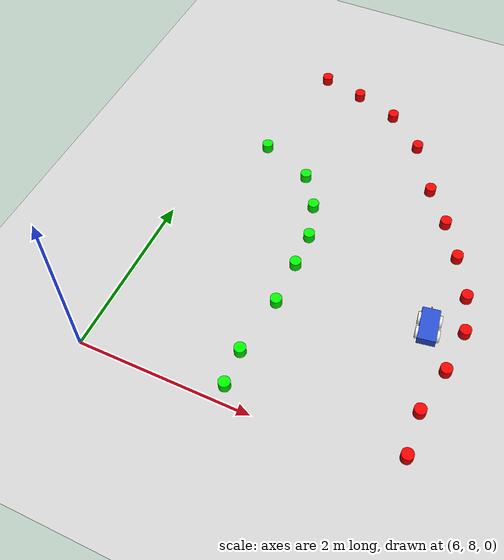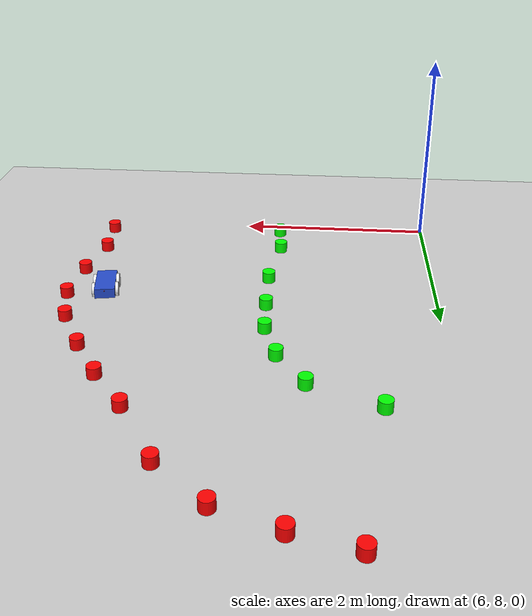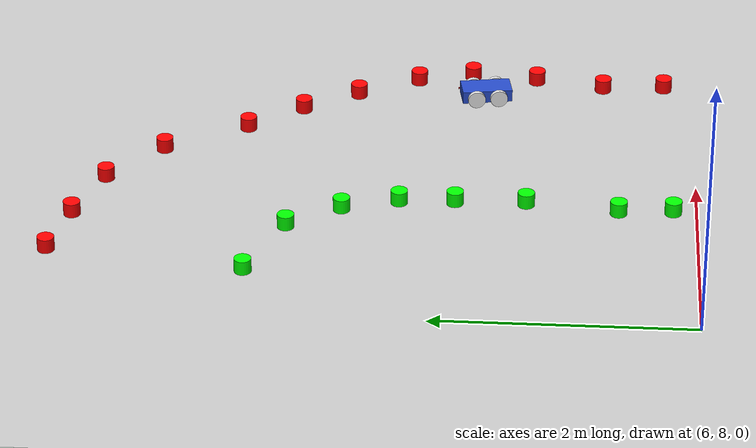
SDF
<sdf version="1.7">
 <world name="default">
  <model name="ground_plane">
   <static>1</static>
   <link name="link">
    <collision name="collision">
     <geometry><plane><normal>0 0 1</normal><size>100 100</size></plane></geometry>
     <surface>
      <contact><collide_bitmask>65535</collide_bitmask></contact>
      <friction><ode><mu>100</mu><mu2>50</mu2></ode></friction>
     </surface>
    </collision>
    <visual name="visual">
     <cast_shadows>0</cast_shadows>
     <geometry><plane><normal>0 0 1</normal><size>100 100</size></plane></geometry>
     <material>
      <script><uri>file://media/materials/scripts/gazebo.material</uri><name>Gazebo/Grey</name></script>
     </material>
    </visual>
   </link>
  </model>
  <model name="robot">
   <link name="base_link">
    <inertial>
     <pose>0 0 0.08 0 -0 0</pose>
     <mass>21.6</mass>
     <inertia>
      <ixx>0.306001</ixx>
      <ixy>0</ixy>
      <ixz>0</ixz>
      <iyy>0.360001</iyy>
      <iyz>-8.8e-08</iyz>
      <izz>0.540001</izz>
     </inertia>
    </inertial>
    <collision name="base_link_collision">
     <pose>0 0 0.08 0 -0 0</pose>
     <geometry><box><size>0.2 0.4 0.1</size></box></geometry>
    </collision>
    <collision name="base_link_fixed_joint_lump__sensor_link_right_collision_1">
     <pose>0 0.22 0.12 0 -0 1.5708</pose>
     <geometry><box><size>0.01 0.01 0.01</size></box></geometry>
    </collision>
    <visual name="base_link_visual">
     <pose>0 0 0.08 0 -0 0</pose>
     <geometry><box><size>0.2 0.4 0.1</size></box></geometry>
     <material>
      <script><name>Gazebo/Blue</name><uri>file://media/materials/scripts/gazebo.material</uri></script>
     </material>
    </visual>
    <visual name="base_link_fixed_joint_lump__sensor_link_right_visual_1">
     <pose>0 0.22 0.12 0 -0 1.5708</pose>
     <geometry><box><size>0.01 0.01 0.01</size></box></geometry>
     <material>
      <script><name>Gazebo/Red</name><uri>file://media/materials/scripts/gazebo.material</uri></script>
     </material>
    </visual>
    <sensor name="camera_right" type="camera">
     <update_rate>30</update_rate>
     <camera name="head">
      <horizontal_fov>1.5</horizontal_fov>
      <image><width>640</width><height>480</height><format>R8G8B8</format></image>
      <clip><near>0.02</near><far>100</far></clip>
      <noise><type>gaussian</type><mean>0</mean><stddev>0.007</stddev></noise>
     </camera>
     <plugin name="camera_controller" filename="libgazebo_ros_camera.so">
      <alwaysOn>1</alwaysOn>
      <updateRate>0.0</updateRate>
      <cameraName>camera</cameraName>
      <frameName>camera_link</frameName>
      <imageTopicName>rgb/image_raw</imageTopicName>
      <depthImageTopicName>depth/image_raw</depthImageTopicName>
      <pointCloudTopicName>depth/points</pointCloudTopicName>
      <cameraInfoTopicName>rgb/camera_info</cameraInfoTopicName>
      <depthImageCameraInfoTopicName>depth/camera_info</depthImageCameraInfoTopicName>
      <pointCloudCutoff>0.4</pointCloudCutoff>
      <hackBaseline>0.07</hackBaseline>
      <distortionK1>0.0</distortionK1>
      <distortionK2>0.0</distortionK2>
      <distortionK3>0.0</distortionK3>
      <distortionT1>0.0</distortionT1>
      <distortionT2>0.0</distortionT2>
      <robotNamespace>/</robotNamespace>
     </plugin>
     <pose>0 0.22 0.12 0 -0 1.5708</pose>
    </sensor>
   </link>
   <joint name="joint_base_to_left_back_wheel" type="revolute">
    <pose relative_to="base_link">-0.115 -0.09 0.07 3.14159 1.57079 3.14159</pose>
    <parent>base_link</parent>
    <child>left_back_wheel</child>
    <axis>
     <xyz>0 0 1</xyz>
     <limit><lower>-1e+16</lower><upper>1e+16</upper></limit>
     <dynamics><spring_reference>0</spring_reference><spring_stiffness>0</spring_stiffness></dynamics>
    </axis>
   </joint>
   <link name="left_back_wheel">
    <pose relative_to="joint_base_to_left_back_wheel">0 0 0 0 -0 0</pose>
    <inertial>
     <mass>0.54</mass>
     <inertia>
      <ixx>0.000702</ixx>
      <ixy>0</ixy>
      <ixz>0</ixz>
      <iyy>0.000702</iyy>
      <iyz>0</iyz>
      <izz>0.001323</izz>
     </inertia>
    </inertial>
    <collision name="left_back_wheel_collision">
     <geometry><cylinder><length>0.03</length><radius>0.07</radius></cylinder></geometry>
    </collision>
    <visual name="left_back_wheel_visual">
     <geometry><cylinder><length>0.03</length><radius>0.07</radius></cylinder></geometry>
     <material>
      <script><name>Gazebo/White</name><uri>file://media/materials/scripts/gazebo.material</uri></script>
     </material>
    </visual>
   </link>
   <joint name="joint_base_to_left_front_wheel" type="revolute">
    <pose relative_to="base_link">-0.115 0.09 0.07 3.14159 1.57079 3.14159</pose>
    <parent>base_link</parent>
    <child>left_front_wheel</child>
    <axis>
     <xyz>0 0 1</xyz>
     <limit><lower>-1e+16</lower><upper>1e+16</upper></limit>
     <dynamics><spring_reference>0</spring_reference><spring_stiffness>0</spring_stiffness></dynamics>
    </axis>
   </joint>
   <link name="left_front_wheel">
    <pose relative_to="joint_base_to_left_front_wheel">0 0 0 0 -0 0</pose>
    <inertial>
     <mass>0.54</mass>
     <inertia>
      <ixx>0.000702</ixx>
      <ixy>0</ixy>
      <ixz>0</ixz>
      <iyy>0.000702</iyy>
      <iyz>0</iyz>
      <izz>0.001323</izz>
     </inertia>
    </inertial>
    <collision name="left_front_wheel_collision">
     <geometry><cylinder><length>0.03</length><radius>0.07</radius></cylinder></geometry>
    </collision>
    <visual name="left_front_wheel_visual">
     <geometry><cylinder><length>0.03</length><radius>0.07</radius></cylinder></geometry>
     <material>
      <script><name>Gazebo/White</name><uri>file://media/materials/scripts/gazebo.material</uri></script>
     </material>
    </visual>
   </link>
   <joint name="joint_base_to_right_back_wheel" type="revolute">
    <pose relative_to="base_link">0.115 -0.09 0.07 3.14159 1.57079 3.14159</pose>
    <parent>base_link</parent>
    <child>right_back_wheel</child>
    <axis>
     <xyz>0 0 1</xyz>
     <limit><lower>-1e+16</lower><upper>1e+16</upper></limit>
     <dynamics><spring_reference>0</spring_reference><spring_stiffness>0</spring_stiffness></dynamics>
    </axis>
   </joint>
   <link name="right_back_wheel">
    <pose relative_to="joint_base_to_right_back_wheel">0 0 0 0 -0 0</pose>
    <inertial>
     <mass>0.54</mass>
     <inertia>
      <ixx>0.000702</ixx>
      <ixy>0</ixy>
      <ixz>0</ixz>
      <iyy>0.000702</iyy>
      <iyz>0</iyz>
      <izz>0.001323</izz>
     </inertia>
    </inertial>
    <collision name="right_back_wheel_collision">
     <geometry><cylinder><length>0.03</length><radius>0.07</radius></cylinder></geometry>
    </collision>
    <visual name="right_back_wheel_visual">
     <geometry><cylinder><length>0.03</length><radius>0.07</radius></cylinder></geometry>
     <material>
      <script><name>Gazebo/White</name><uri>file://media/materials/scripts/gazebo.material</uri></script>
     </material>
    </visual>
   </link>
   <joint name="joint_base_to_right_front_wheel" type="revolute">
    <pose relative_to="base_link">0.115 0.09 0.07 3.14159 1.57079 3.14159</pose>
    <parent>base_link</parent>
    <child>right_front_wheel</child>
    <axis>
     <xyz>0 0 1</xyz>
     <limit><lower>-1e+16</lower><upper>1e+16</upper></limit>
     <dynamics><spring_reference>0</spring_reference><spring_stiffness>0</spring_stiffness></dynamics>
    </axis>
   </joint>
   <link name="right_front_wheel">
    <pose relative_to="joint_base_to_right_front_wheel">0 0 0 0 -0 0</pose>
    <inertial>
     <mass>0.54</mass>
     <inertia>
      <ixx>0.000702</ixx>
      <ixy>0</ixy>
      <ixz>0</ixz>
      <iyy>0.000702</iyy>
      <iyz>0</iyz>
      <izz>0.001323</izz>
     </inertia>
    </inertial>
    <collision name="right_front_wheel_collision">
     <geometry><cylinder><length>0.03</length><radius>0.07</radius></cylinder></geometry>
    </collision>
    <visual name="right_front_wheel_visual">
     <geometry><cylinder><length>0.03</length><radius>0.07</radius></cylinder></geometry>
     <material>
      <script><name>Gazebo/White</name><uri>file://media/materials/scripts/gazebo.material</uri></script>
     </material>
    </visual>
   </link>
   <static>0</static>
   <plugin name="skid_steer_drive_controller" filename="libgazebo_ros_skid_steer_drive.so">
    <updateRate>100.0</updateRate>
    <leftFrontJoint>joint_base_to_left_front_wheel</leftFrontJoint>
    <rightFrontJoint>joint_base_to_right_front_wheel</rightFrontJoint>
    <leftRearJoint>joint_base_to_left_back_wheel</leftRearJoint>
    <rightRearJoint>joint_base_to_right_back_wheel</rightRearJoint>
    <wheelSeparation>0.2</wheelSeparation>
    <wheelDiameter>0.14</wheelDiameter>
    <robotBaseFrame>base_link</robotBaseFrame>
    <torque>20</torque>
    <commandTopic>cmd_vel</commandTopic>
    <broadcastTF>1</broadcastTF>
    <robotNamespace>/</robotNamespace>
   </plugin>
   <pose>9.30725 9.66834 2.7e-05 9.2e-05 -6.9e-05 0.161614</pose>
  </model>
  <model name="latinha_verm_clone_5_clone_0_clone_clone_5">
   <link name="link">
    <inertial>
     <mass>1</mass>
     <inertia><ixx>0.145833</ixx><ixy>0</ixy><ixz>0</ixz><iyy>0.145833</iyy><iyz>0</iyz><izz>0.125</izz></inertia>
    </inertial>
    <visual name="visual">
     <geometry><cylinder><radius>0.066</radius><length>0.114</length></cylinder></geometry>
     <material>
      <script><name>Gazebo/Gray</name><uri>file://media/materials/scripts/gazebo.material</uri></script>
      <shader type="pixel"><normal_map>__default__</normal_map></shader>
      <ambient>1 0 0 1</ambient>
      <diffuse>1 0 0 1</diffuse>
      <specular>0.1 0.1 0.1 1</specular>
      <emissive>0 0 0 1</emissive>
     </material>
    </visual>
    <collision name="collision">
     <geometry><cylinder><radius>0.05</radius><length>0.1</length></cylinder></geometry>
     <surface>
      <friction>
       <ode><mu>1</mu><mu2>1</mu2><fdir1>0 0 0</fdir1><slip1>0</slip1><slip2>0</slip2></ode>
       <torsional>
        <coefficient>1</coefficient>
        <patch_radius>0</patch_radius>
        <surface_radius>0</surface_radius>
        <use_patch_radius>1</use_patch_radius>
        <ode><slip>0</slip></ode>
       </torsional>
      </friction>
      <bounce><restitution_coefficient>0</restitution_coefficient><threshold>1e+06</threshold></bounce>
      <contact>
       <collide_without_contact>0</collide_without_contact>
       <collide_without_contact_bitmask>1</collide_without_contact_bitmask>
       <collide_bitmask>1</collide_bitmask>
       <ode>
        <soft_cfm>0</soft_cfm>
        <soft_erp>0.2</soft_erp>
        <kp>1e+13</kp>
        <kd>1</kd>
        <max_vel>0.01</max_vel>
        <min_depth>0</min_depth>
       </ode>
       <bullet>
        <split_impulse>1</split_impulse>
        <split_impulse_penetration_threshold>-0.01</split_impulse_penetration_threshold>
        <soft_cfm>0</soft_cfm>
        <soft_erp>0.2</soft_erp>
        <kp>1e+13</kp>
        <kd>1</kd>
       </bullet>
      </contact>
     </surface>
    </collision>
   </link>
   <static>0</static>
   <pose>9.55946 8.22977 0.049994 0 -0 2.9e-05</pose>
  </model>
  <model name="latinha_verm_clone_5_clone_0_clone_clone_6">
   <link name="link">
    <inertial>
     <mass>1</mass>
     <inertia><ixx>0.145833</ixx><ixy>0</ixy><ixz>0</ixz><iyy>0.145833</iyy><iyz>0</iyz><izz>0.125</izz></inertia>
    </inertial>
    <visual name="visual">
     <geometry><cylinder><radius>0.066</radius><length>0.114</length></cylinder></geometry>
     <material>
      <script><name>Gazebo/Gray</name><uri>file://media/materials/scripts/gazebo.material</uri></script>
      <shader type="pixel"><normal_map>__default__</normal_map></shader>
      <ambient>1 0 0 1</ambient>
      <diffuse>1 0 0 1</diffuse>
      <specular>0.1 0.1 0.1 1</specular>
      <emissive>0 0 0 1</emissive>
     </material>
    </visual>
    <collision name="collision">
     <geometry><cylinder><radius>0.05</radius><length>0.1</length></cylinder></geometry>
     <surface>
      <friction>
       <ode><mu>1</mu><mu2>1</mu2><fdir1>0 0 0</fdir1><slip1>0</slip1><slip2>0</slip2></ode>
       <torsional>
        <coefficient>1</coefficient>
        <patch_radius>0</patch_radius>
        <surface_radius>0</surface_radius>
        <use_patch_radius>1</use_patch_radius>
        <ode><slip>0</slip></ode>
       </torsional>
      </friction>
      <bounce><restitution_coefficient>0</restitution_coefficient><threshold>1e+06</threshold></bounce>
      <contact>
       <collide_without_contact>0</collide_without_contact>
       <collide_without_contact_bitmask>1</collide_without_contact_bitmask>
       <collide_bitmask>1</collide_bitmask>
       <ode>
        <soft_cfm>0</soft_cfm>
        <soft_erp>0.2</soft_erp>
        <kp>1e+13</kp>
        <kd>1</kd>
        <max_vel>0.01</max_vel>
        <min_depth>0</min_depth>
       </ode>
       <bullet>
        <split_impulse>1</split_impulse>
        <split_impulse_penetration_threshold>-0.01</split_impulse_penetration_threshold>
        <soft_cfm>0</soft_cfm>
        <soft_erp>0.2</soft_erp>
        <kp>1e+13</kp>
        <kd>1</kd>
       </bullet>
      </contact>
     </surface>
    </collision>
   </link>
   <static>0</static>
   <pose>9.52624 8.72094 0.049994 0 -0 2.9e-05</pose>
  </model>
  <model name="latinha_verm_clone_5_clone_0_clone_clone_7">
   <link name="link">
    <inertial>
     <mass>1</mass>
     <inertia><ixx>0.145833</ixx><ixy>0</ixy><ixz>0</ixz><iyy>0.145833</iyy><iyz>0</iyz><izz>0.125</izz></inertia>
    </inertial>
    <visual name="visual">
     <geometry><cylinder><radius>0.066</radius><length>0.114</length></cylinder></geometry>
     <material>
      <script><name>Gazebo/Gray</name><uri>file://media/materials/scripts/gazebo.material</uri></script>
      <shader type="pixel"><normal_map>__default__</normal_map></shader>
      <ambient>1 0 0 1</ambient>
      <diffuse>1 0 0 1</diffuse>
      <specular>0.1 0.1 0.1 1</specular>
      <emissive>0 0 0 1</emissive>
     </material>
    </visual>
    <collision name="collision">
     <geometry><cylinder><radius>0.05</radius><length>0.1</length></cylinder></geometry>
     <surface>
      <friction>
       <ode><mu>1</mu><mu2>1</mu2><fdir1>0 0 0</fdir1><slip1>0</slip1><slip2>0</slip2></ode>
       <torsional>
        <coefficient>1</coefficient>
        <patch_radius>0</patch_radius>
        <surface_radius>0</surface_radius>
        <use_patch_radius>1</use_patch_radius>
        <ode><slip>0</slip></ode>
       </torsional>
      </friction>
      <bounce><restitution_coefficient>0</restitution_coefficient><threshold>1e+06</threshold></bounce>
      <contact>
       <collide_without_contact>0</collide_without_contact>
       <collide_without_contact_bitmask>1</collide_without_contact_bitmask>
       <collide_bitmask>1</collide_bitmask>
       <ode>
        <soft_cfm>0</soft_cfm>
        <soft_erp>0.2</soft_erp>
        <kp>1e+13</kp>
        <kd>1</kd>
        <max_vel>0.01</max_vel>
        <min_depth>0</min_depth>
       </ode>
       <bullet>
        <split_impulse>1</split_impulse>
        <split_impulse_penetration_threshold>-0.01</split_impulse_penetration_threshold>
        <soft_cfm>0</soft_cfm>
        <soft_erp>0.2</soft_erp>
        <kp>1e+13</kp>
        <kd>1</kd>
       </bullet>
      </contact>
     </surface>
    </collision>
   </link>
   <static>0</static>
   <pose>9.62889 9.25991 0.049994 0 -0 2.9e-05</pose>
  </model>
  <model name="latinha_verde_clone_8_clone_2_clone">
   <link name="link">
    <inertial>
     <mass>1</mass>
     <inertia><ixx>0.145833</ixx><ixy>0</ixy><ixz>0</ixz><iyy>0.145833</iyy><iyz>0</iyz><izz>0.125</izz></inertia>
    </inertial>
    <visual name="visual">
     <geometry><cylinder><radius>0.066</radius><length>0.114</length></cylinder></geometry>
     <material>
      <script><name>Gazebo/Gray</name><uri>file://media/materials/scripts/gazebo.material</uri></script>
      <shader type="pixel"><normal_map>__default__</normal_map></shader>
      <ambient>0 1 0 1</ambient>
      <diffuse>0 1 0 1</diffuse>
      <specular>0.1 0.1 0.1 1</specular>
      <emissive>0 0 0 1</emissive>
     </material>
    </visual>
    <collision name="collision">
     <geometry><cylinder><radius>0.05</radius><length>0.1</length></cylinder></geometry>
     <surface>
      <friction>
       <ode><mu>1</mu><mu2>1</mu2><fdir1>0 0 0</fdir1><slip1>0</slip1><slip2>0</slip2></ode>
       <torsional>
        <coefficient>1</coefficient>
        <patch_radius>0</patch_radius>
        <surface_radius>0</surface_radius>
        <use_patch_radius>1</use_patch_radius>
        <ode><slip>0</slip></ode>
       </torsional>
      </friction>
      <bounce><restitution_coefficient>0</restitution_coefficient><threshold>1e+06</threshold></bounce>
      <contact>
       <collide_without_contact>0</collide_without_contact>
       <collide_without_contact_bitmask>1</collide_without_contact_bitmask>
       <collide_bitmask>1</collide_bitmask>
       <ode>
        <soft_cfm>0</soft_cfm>
        <soft_erp>0.2</soft_erp>
        <kp>1e+13</kp>
        <kd>1</kd>
        <max_vel>0.01</max_vel>
        <min_depth>0</min_depth>
       </ode>
       <bullet>
        <split_impulse>1</split_impulse>
        <split_impulse_penetration_threshold>-0.01</split_impulse_penetration_threshold>
        <soft_cfm>0</soft_cfm>
        <soft_erp>0.2</soft_erp>
        <kp>1e+13</kp>
        <kd>1</kd>
       </bullet>
      </contact>
     </surface>
    </collision>
   </link>
   <static>0</static>
   <pose>7.62481 8.1807 0.05 0 -0 0.000128</pose>
  </model>
  <model name="latinha_verde_clone_8_clone_2_clone_0">
   <link name="link">
    <inertial>
     <mass>1</mass>
     <inertia><ixx>0.145833</ixx><ixy>0</ixy><ixz>0</ixz><iyy>0.145833</iyy><iyz>0</iyz><izz>0.125</izz></inertia>
    </inertial>
    <visual name="visual">
     <geometry><cylinder><radius>0.066</radius><length>0.114</length></cylinder></geometry>
     <material>
      <script><name>Gazebo/Gray</name><uri>file://media/materials/scripts/gazebo.material</uri></script>
      <shader type="pixel"><normal_map>__default__</normal_map></shader>
      <ambient>0 1 0 1</ambient>
      <diffuse>0 1 0 1</diffuse>
      <specular>0.1 0.1 0.1 1</specular>
      <emissive>0 0 0 1</emissive>
     </material>
    </visual>
    <collision name="collision">
     <geometry><cylinder><radius>0.05</radius><length>0.1</length></cylinder></geometry>
     <surface>
      <friction>
       <ode><mu>1</mu><mu2>1</mu2><fdir1>0 0 0</fdir1><slip1>0</slip1><slip2>0</slip2></ode>
       <torsional>
        <coefficient>1</coefficient>
        <patch_radius>0</patch_radius>
        <surface_radius>0</surface_radius>
        <use_patch_radius>1</use_patch_radius>
        <ode><slip>0</slip></ode>
       </torsional>
      </friction>
      <bounce><restitution_coefficient>0</restitution_coefficient><threshold>1e+06</threshold></bounce>
      <contact>
       <collide_without_contact>0</collide_without_contact>
       <collide_without_contact_bitmask>1</collide_without_contact_bitmask>
       <collide_bitmask>1</collide_bitmask>
       <ode>
        <soft_cfm>0</soft_cfm>
        <soft_erp>0.2</soft_erp>
        <kp>1e+13</kp>
        <kd>1</kd>
        <max_vel>0.01</max_vel>
        <min_depth>0</min_depth>
       </ode>
       <bullet>
        <split_impulse>1</split_impulse>
        <split_impulse_penetration_threshold>-0.01</split_impulse_penetration_threshold>
        <soft_cfm>0</soft_cfm>
        <soft_erp>0.2</soft_erp>
        <kp>1e+13</kp>
        <kd>1</kd>
       </bullet>
      </contact>
     </surface>
    </collision>
   </link>
   <static>0</static>
   <pose>7.5951 8.59913 0.05 0 -0 0.000128</pose>
  </model>
  <model name="latinha_verde_clone_8_clone_2_clone_1">
   <link name="link">
    <inertial>
     <mass>1</mass>
     <inertia><ixx>0.145833</ixx><ixy>0</ixy><ixz>0</ixz><iyy>0.145833</iyy><iyz>0</iyz><izz>0.125</izz></inertia>
    </inertial>
    <visual name="visual">
     <geometry><cylinder><radius>0.066</radius><length>0.114</length></cylinder></geometry>
     <material>
      <script><name>Gazebo/Gray</name><uri>file://media/materials/scripts/gazebo.material</uri></script>
      <shader type="pixel"><normal_map>__default__</normal_map></shader>
      <ambient>0 1 0 1</ambient>
      <diffuse>0 1 0 1</diffuse>
      <specular>0.1 0.1 0.1 1</specular>
      <emissive>0 0 0 1</emissive>
     </material>
    </visual>
    <collision name="collision">
     <geometry><cylinder><radius>0.05</radius><length>0.1</length></cylinder></geometry>
     <surface>
      <friction>
       <ode><mu>1</mu><mu2>1</mu2><fdir1>0 0 0</fdir1><slip1>0</slip1><slip2>0</slip2></ode>
       <torsional>
        <coefficient>1</coefficient>
        <patch_radius>0</patch_radius>
        <surface_radius>0</surface_radius>
        <use_patch_radius>1</use_patch_radius>
        <ode><slip>0</slip></ode>
       </torsional>
      </friction>
      <bounce><restitution_coefficient>0</restitution_coefficient><threshold>1e+06</threshold></bounce>
      <contact>
       <collide_without_contact>0</collide_without_contact>
       <collide_without_contact_bitmask>1</collide_without_contact_bitmask>
       <collide_bitmask>1</collide_bitmask>
       <ode>
        <soft_cfm>0</soft_cfm>
        <soft_erp>0.2</soft_erp>
        <kp>1e+13</kp>
        <kd>1</kd>
        <max_vel>0.01</max_vel>
        <min_depth>0</min_depth>
       </ode>
       <bullet>
        <split_impulse>1</split_impulse>
        <split_impulse_penetration_threshold>-0.01</split_impulse_penetration_threshold>
        <soft_cfm>0</soft_cfm>
        <soft_erp>0.2</soft_erp>
        <kp>1e+13</kp>
        <kd>1</kd>
       </bullet>
      </contact>
     </surface>
    </collision>
   </link>
   <static>0</static>
   <pose>7.68376 9.30799 0.04999 0 -0 0.00013</pose>
  </model>
  <model name="latinha_verde_clone_8_clone_2_clone_2">
   <link name="link">
    <inertial>
     <mass>1</mass>
     <inertia><ixx>0.145833</ixx><ixy>0</ixy><ixz>0</ixz><iyy>0.145833</iyy><iyz>0</iyz><izz>0.125</izz></inertia>
    </inertial>
    <visual name="visual">
     <geometry><cylinder><radius>0.066</radius><length>0.114</length></cylinder></geometry>
     <material>
      <script><name>Gazebo/Gray</name><uri>file://media/materials/scripts/gazebo.material</uri></script>
      <shader type="pixel"><normal_map>__default__</normal_map></shader>
      <ambient>0 1 0 1</ambient>
      <diffuse>0 1 0 1</diffuse>
      <specular>0.1 0.1 0.1 1</specular>
      <emissive>0 0 0 1</emissive>
     </material>
    </visual>
    <collision name="collision">
     <geometry><cylinder><radius>0.05</radius><length>0.1</length></cylinder></geometry>
     <surface>
      <friction>
       <ode><mu>1</mu><mu2>1</mu2><fdir1>0 0 0</fdir1><slip1>0</slip1><slip2>0</slip2></ode>
       <torsional>
        <coefficient>1</coefficient>
        <patch_radius>0</patch_radius>
        <surface_radius>0</surface_radius>
        <use_patch_radius>1</use_patch_radius>
        <ode><slip>0</slip></ode>
       </torsional>
      </friction>
      <bounce><restitution_coefficient>0</restitution_coefficient><threshold>1e+06</threshold></bounce>
      <contact>
       <collide_without_contact>0</collide_without_contact>
       <collide_without_contact_bitmask>1</collide_without_contact_bitmask>
       <collide_bitmask>1</collide_bitmask>
       <ode>
        <soft_cfm>0</soft_cfm>
        <soft_erp>0.2</soft_erp>
        <kp>1e+13</kp>
        <kd>1</kd>
        <max_vel>0.01</max_vel>
        <min_depth>0</min_depth>
       </ode>
       <bullet>
        <split_impulse>1</split_impulse>
        <split_impulse_penetration_threshold>-0.01</split_impulse_penetration_threshold>
        <soft_cfm>0</soft_cfm>
        <soft_erp>0.2</soft_erp>
        <kp>1e+13</kp>
        <kd>1</kd>
       </bullet>
      </contact>
     </surface>
    </collision>
   </link>
   <static>0</static>
   <pose>7.67397 9.85504 0.049993 0 -0 0.000118</pose>
  </model>
  <model name="latinha_verde_clone_8_clone_2_clone_2_clone">
   <link name="link">
    <inertial>
     <mass>1</mass>
     <inertia><ixx>0.145833</ixx><ixy>0</ixy><ixz>0</ixz><iyy>0.145833</iyy><iyz>0</iyz><izz>0.125</izz></inertia>
    </inertial>
    <visual name="visual">
     <geometry><cylinder><radius>0.066</radius><length>0.114</length></cylinder></geometry>
     <material>
      <script><name>Gazebo/Gray</name><uri>file://media/materials/scripts/gazebo.material</uri></script>
      <shader type="pixel"><normal_map>__default__</normal_map></shader>
      <ambient>0 1 0 1</ambient>
      <diffuse>0 1 0 1</diffuse>
      <specular>0.1 0.1 0.1 1</specular>
      <emissive>0 0 0 1</emissive>
     </material>
    </visual>
    <collision name="collision">
     <geometry><cylinder><radius>0.05</radius><length>0.1</length></cylinder></geometry>
     <surface>
      <friction>
       <ode><mu>1</mu><mu2>1</mu2><fdir1>0 0 0</fdir1><slip1>0</slip1><slip2>0</slip2></ode>
       <torsional>
        <coefficient>1</coefficient>
        <patch_radius>0</patch_radius>
        <surface_radius>0</surface_radius>
        <use_patch_radius>1</use_patch_radius>
        <ode><slip>0</slip></ode>
       </torsional>
      </friction>
      <bounce><restitution_coefficient>0</restitution_coefficient><threshold>1e+06</threshold></bounce>
      <contact>
       <collide_without_contact>0</collide_without_contact>
       <collide_without_contact_bitmask>1</collide_without_contact_bitmask>
       <collide_bitmask>1</collide_bitmask>
       <ode>
        <soft_cfm>0</soft_cfm>
        <soft_erp>0.2</soft_erp>
        <kp>1e+13</kp>
        <kd>1</kd>
        <max_vel>0.01</max_vel>
        <min_depth>0</min_depth>
       </ode>
       <bullet>
        <split_impulse>1</split_impulse>
        <split_impulse_penetration_threshold>-0.01</split_impulse_penetration_threshold>
        <soft_cfm>0</soft_cfm>
        <soft_erp>0.2</soft_erp>
        <kp>1e+13</kp>
        <kd>1</kd>
       </bullet>
      </contact>
     </surface>
    </collision>
   </link>
   <static>0</static>
   <pose>7.52756 10.721 0.05 0 -0 0.000118</pose>
  </model>
  <model name="latinha_verde_clone_8_clone_2_clone_2_clone_0">
   <link name="link">
    <inertial>
     <mass>1</mass>
     <inertia><ixx>0.145833</ixx><ixy>0</ixy><ixz>0</ixz><iyy>0.145833</iyy><iyz>0</iyz><izz>0.125</izz></inertia>
    </inertial>
    <visual name="visual">
     <geometry><cylinder><radius>0.066</radius><length>0.114</length></cylinder></geometry>
     <material>
      <script><name>Gazebo/Gray</name><uri>file://media/materials/scripts/gazebo.material</uri></script>
      <shader type="pixel"><normal_map>__default__</normal_map></shader>
      <ambient>0 1 0 1</ambient>
      <diffuse>0 1 0 1</diffuse>
      <specular>0.1 0.1 0.1 1</specular>
      <emissive>0 0 0 1</emissive>
     </material>
    </visual>
    <collision name="collision">
     <geometry><cylinder><radius>0.05</radius><length>0.1</length></cylinder></geometry>
     <surface>
      <friction>
       <ode><mu>1</mu><mu2>1</mu2><fdir1>0 0 0</fdir1><slip1>0</slip1><slip2>0</slip2></ode>
       <torsional>
        <coefficient>1</coefficient>
        <patch_radius>0</patch_radius>
        <surface_radius>0</surface_radius>
        <use_patch_radius>1</use_patch_radius>
        <ode><slip>0</slip></ode>
       </torsional>
      </friction>
      <bounce><restitution_coefficient>0</restitution_coefficient><threshold>1e+06</threshold></bounce>
      <contact>
       <collide_without_contact>0</collide_without_contact>
       <collide_without_contact_bitmask>1</collide_without_contact_bitmask>
       <collide_bitmask>1</collide_bitmask>
       <ode>
        <soft_cfm>0</soft_cfm>
        <soft_erp>0.2</soft_erp>
        <kp>1e+13</kp>
        <kd>1</kd>
        <max_vel>0.01</max_vel>
        <min_depth>0</min_depth>
       </ode>
       <bullet>
        <split_impulse>1</split_impulse>
        <split_impulse_penetration_threshold>-0.01</split_impulse_penetration_threshold>
        <soft_cfm>0</soft_cfm>
        <soft_erp>0.2</soft_erp>
        <kp>1e+13</kp>
        <kd>1</kd>
       </bullet>
      </contact>
     </surface>
    </collision>
   </link>
   <static>0</static>
   <pose>7.65838 10.285 0.05 0 -0 0.000118</pose>
  </model>
  <model name="latinha_verde_clone_8_clone_2_clone_2_clone_1">
   <link name="link">
    <inertial>
     <mass>1</mass>
     <inertia><ixx>0.145833</ixx><ixy>0</ixy><ixz>0</ixz><iyy>0.145833</iyy><iyz>0</iyz><izz>0.125</izz></inertia>
    </inertial>
    <visual name="visual">
     <geometry><cylinder><radius>0.066</radius><length>0.114</length></cylinder></geometry>
     <material>
      <script><name>Gazebo/Gray</name><uri>file://media/materials/scripts/gazebo.material</uri></script>
      <shader type="pixel"><normal_map>__default__</normal_map></shader>
      <ambient>0 1 0 1</ambient>
      <diffuse>0 1 0 1</diffuse>
      <specular>0.1 0.1 0.1 1</specular>
      <emissive>0 0 0 1</emissive>
     </material>
    </visual>
    <collision name="collision">
     <geometry><cylinder><radius>0.05</radius><length>0.1</length></cylinder></geometry>
     <surface>
      <friction>
       <ode><mu>1</mu><mu2>1</mu2><fdir1>0 0 0</fdir1><slip1>0</slip1><slip2>0</slip2></ode>
       <torsional>
        <coefficient>1</coefficient>
        <patch_radius>0</patch_radius>
        <surface_radius>0</surface_radius>
        <use_patch_radius>1</use_patch_radius>
        <ode><slip>0</slip></ode>
       </torsional>
      </friction>
      <bounce><restitution_coefficient>0</restitution_coefficient><threshold>1e+06</threshold></bounce>
      <contact>
       <collide_without_contact>0</collide_without_contact>
       <collide_without_contact_bitmask>1</collide_without_contact_bitmask>
       <collide_bitmask>1</collide_bitmask>
       <ode>
        <soft_cfm>0</soft_cfm>
        <soft_erp>0.2</soft_erp>
        <kp>1e+13</kp>
        <kd>1</kd>
        <max_vel>0.01</max_vel>
        <min_depth>0</min_depth>
       </ode>
       <bullet>
        <split_impulse>1</split_impulse>
        <split_impulse_penetration_threshold>-0.01</split_impulse_penetration_threshold>
        <soft_cfm>0</soft_cfm>
        <soft_erp>0.2</soft_erp>
        <kp>1e+13</kp>
        <kd>1</kd>
       </bullet>
      </contact>
     </surface>
    </collision>
   </link>
   <static>0</static>
   <pose>7.25531 11.1285 0.05 0 -0 0.000118</pose>
  </model>
  <model name="latinha_verde_clone_8_clone_2_clone_2_clone_2">
   <link name="link">
    <inertial>
     <mass>1</mass>
     <inertia><ixx>0.145833</ixx><ixy>0</ixy><ixz>0</ixz><iyy>0.145833</iyy><iyz>0</iyz><izz>0.125</izz></inertia>
    </inertial>
    <visual name="visual">
     <geometry><cylinder><radius>0.066</radius><length>0.114</length></cylinder></geometry>
     <material>
      <script><name>Gazebo/Gray</name><uri>file://media/materials/scripts/gazebo.material</uri></script>
      <shader type="pixel"><normal_map>__default__</normal_map></shader>
      <ambient>0 1 0 1</ambient>
      <diffuse>0 1 0 1</diffuse>
      <specular>0.1 0.1 0.1 1</specular>
      <emissive>0 0 0 1</emissive>
     </material>
    </visual>
    <collision name="collision">
     <geometry><cylinder><radius>0.05</radius><length>0.1</length></cylinder></geometry>
     <surface>
      <friction>
       <ode><mu>1</mu><mu2>1</mu2><fdir1>0 0 0</fdir1><slip1>0</slip1><slip2>0</slip2></ode>
       <torsional>
        <coefficient>1</coefficient>
        <patch_radius>0</patch_radius>
        <surface_radius>0</surface_radius>
        <use_patch_radius>1</use_patch_radius>
        <ode><slip>0</slip></ode>
       </torsional>
      </friction>
      <bounce><restitution_coefficient>0</restitution_coefficient><threshold>1e+06</threshold></bounce>
      <contact>
       <collide_without_contact>0</collide_without_contact>
       <collide_without_contact_bitmask>1</collide_without_contact_bitmask>
       <collide_bitmask>1</collide_bitmask>
       <ode>
        <soft_cfm>0</soft_cfm>
        <soft_erp>0.2</soft_erp>
        <kp>1e+13</kp>
        <kd>1</kd>
        <max_vel>0.01</max_vel>
        <min_depth>0</min_depth>
       </ode>
       <bullet>
        <split_impulse>1</split_impulse>
        <split_impulse_penetration_threshold>-0.01</split_impulse_penetration_threshold>
        <soft_cfm>0</soft_cfm>
        <soft_erp>0.2</soft_erp>
        <kp>1e+13</kp>
        <kd>1</kd>
       </bullet>
      </contact>
     </surface>
    </collision>
   </link>
   <static>0</static>
   <pose>6.60839 11.3955 0.05 0 -0 0.000118</pose>
  </model>
  <model name="latinha_verm_clone_5_clone_0_clone_clone_7_clone">
   <link name="link">
    <inertial>
     <mass>1</mass>
     <inertia><ixx>0.145833</ixx><ixy>0</ixy><ixz>0</ixz><iyy>0.145833</iyy><iyz>0</iyz><izz>0.125</izz></inertia>
    </inertial>
    <visual name="visual">
     <geometry><cylinder><radius>0.066</radius><length>0.114</length></cylinder></geometry>
     <material>
      <script><name>Gazebo/Gray</name><uri>file://media/materials/scripts/gazebo.material</uri></script>
      <shader type="pixel"><normal_map>__default__</normal_map></shader>
      <ambient>1 0 0 1</ambient>
      <diffuse>1 0 0 1</diffuse>
      <specular>0.1 0.1 0.1 1</specular>
      <emissive>0 0 0 1</emissive>
     </material>
    </visual>
    <collision name="collision">
     <geometry><cylinder><radius>0.05</radius><length>0.1</length></cylinder></geometry>
     <surface>
      <friction>
       <ode><mu>1</mu><mu2>1</mu2><fdir1>0 0 0</fdir1><slip1>0</slip1><slip2>0</slip2></ode>
       <torsional>
        <coefficient>1</coefficient>
        <patch_radius>0</patch_radius>
        <surface_radius>0</surface_radius>
        <use_patch_radius>1</use_patch_radius>
        <ode><slip>0</slip></ode>
       </torsional>
      </friction>
      <bounce><restitution_coefficient>0</restitution_coefficient><threshold>1e+06</threshold></bounce>
      <contact>
       <collide_without_contact>0</collide_without_contact>
       <collide_without_contact_bitmask>1</collide_without_contact_bitmask>
       <collide_bitmask>1</collide_bitmask>
       <ode>
        <soft_cfm>0</soft_cfm>
        <soft_erp>0.2</soft_erp>
        <kp>1e+13</kp>
        <kd>1</kd>
        <max_vel>0.01</max_vel>
        <min_depth>0</min_depth>
       </ode>
       <bullet>
        <split_impulse>1</split_impulse>
        <split_impulse_penetration_threshold>-0.01</split_impulse_penetration_threshold>
        <soft_cfm>0</soft_cfm>
        <soft_erp>0.2</soft_erp>
        <kp>1e+13</kp>
        <kd>1</kd>
       </bullet>
      </contact>
     </surface>
    </collision>
   </link>
   <static>0</static>
   <pose>9.67863 9.78234 0.049996 0 -0 2.9e-05</pose>
  </model>
  <model name="latinha_verm_clone_5_clone_0_clone_clone_7_clone_0">
   <link name="link">
    <inertial>
     <mass>1</mass>
     <inertia><ixx>0.145833</ixx><ixy>0</ixy><ixz>0</ixz><iyy>0.145833</iyy><iyz>0</iyz><izz>0.125</izz></inertia>
    </inertial>
    <visual name="visual">
     <geometry><cylinder><radius>0.066</radius><length>0.114</length></cylinder></geometry>
     <material>
      <script><name>Gazebo/Gray</name><uri>file://media/materials/scripts/gazebo.material</uri></script>
      <shader type="pixel"><normal_map>__default__</normal_map></shader>
      <ambient>1 0 0 1</ambient>
      <diffuse>1 0 0 1</diffuse>
      <specular>0.1 0.1 0.1 1</specular>
      <emissive>0 0 0 1</emissive>
     </material>
    </visual>
    <collision name="collision">
     <geometry><cylinder><radius>0.05</radius><length>0.1</length></cylinder></geometry>
     <surface>
      <friction>
       <ode><mu>1</mu><mu2>1</mu2><fdir1>0 0 0</fdir1><slip1>0</slip1><slip2>0</slip2></ode>
       <torsional>
        <coefficient>1</coefficient>
        <patch_radius>0</patch_radius>
        <surface_radius>0</surface_radius>
        <use_patch_radius>1</use_patch_radius>
        <ode><slip>0</slip></ode>
       </torsional>
      </friction>
      <bounce><restitution_coefficient>0</restitution_coefficient><threshold>1e+06</threshold></bounce>
      <contact>
       <collide_without_contact>0</collide_without_contact>
       <collide_without_contact_bitmask>1</collide_without_contact_bitmask>
       <collide_bitmask>1</collide_bitmask>
       <ode>
        <soft_cfm>0</soft_cfm>
        <soft_erp>0.2</soft_erp>
        <kp>1e+13</kp>
        <kd>1</kd>
        <max_vel>0.01</max_vel>
        <min_depth>0</min_depth>
       </ode>
       <bullet>
        <split_impulse>1</split_impulse>
        <split_impulse_penetration_threshold>-0.01</split_impulse_penetration_threshold>
        <soft_cfm>0</soft_cfm>
        <soft_erp>0.2</soft_erp>
        <kp>1e+13</kp>
        <kd>1</kd>
       </bullet>
      </contact>
     </surface>
    </collision>
   </link>
   <static>0</static>
   <pose>9.57116 10.2196 0.049996 0 -0 2.9e-05</pose>
  </model>
  <model name="latinha_verm_clone_5_clone_0_clone_clone_7_clone_1">
   <link name="link">
    <inertial>
     <mass>1</mass>
     <inertia><ixx>0.145833</ixx><ixy>0</ixy><ixz>0</ixz><iyy>0.145833</iyy><iyz>0</iyz><izz>0.125</izz></inertia>
    </inertial>
    <visual name="visual">
     <geometry><cylinder><radius>0.066</radius><length>0.114</length></cylinder></geometry>
     <material>
      <script><name>Gazebo/Gray</name><uri>file://media/materials/scripts/gazebo.material</uri></script>
      <shader type="pixel"><normal_map>__default__</normal_map></shader>
      <ambient>1 0 0 1</ambient>
      <diffuse>1 0 0 1</diffuse>
      <specular>0.1 0.1 0.1 1</specular>
      <emissive>0 0 0 1</emissive>
     </material>
    </visual>
    <collision name="collision">
     <geometry><cylinder><radius>0.05</radius><length>0.1</length></cylinder></geometry>
     <surface>
      <friction>
       <ode><mu>1</mu><mu2>1</mu2><fdir1>0 0 0</fdir1><slip1>0</slip1><slip2>0</slip2></ode>
       <torsional>
        <coefficient>1</coefficient>
        <patch_radius>0</patch_radius>
        <surface_radius>0</surface_radius>
        <use_patch_radius>1</use_patch_radius>
        <ode><slip>0</slip></ode>
       </torsional>
      </friction>
      <bounce><restitution_coefficient>0</restitution_coefficient><threshold>1e+06</threshold></bounce>
      <contact>
       <collide_without_contact>0</collide_without_contact>
       <collide_without_contact_bitmask>1</collide_without_contact_bitmask>
       <collide_bitmask>1</collide_bitmask>
       <ode>
        <soft_cfm>0</soft_cfm>
        <soft_erp>0.2</soft_erp>
        <kp>1e+13</kp>
        <kd>1</kd>
        <max_vel>0.01</max_vel>
        <min_depth>0</min_depth>
       </ode>
       <bullet>
        <split_impulse>1</split_impulse>
        <split_impulse_penetration_threshold>-0.01</split_impulse_penetration_threshold>
        <soft_cfm>0</soft_cfm>
        <soft_erp>0.2</soft_erp>
        <kp>1e+13</kp>
        <kd>1</kd>
       </bullet>
      </contact>
     </surface>
    </collision>
   </link>
   <static>0</static>
   <pose>9.32106 10.6987 0.049996 0 -0 2.9e-05</pose>
  </model>
  <model name="latinha_verm_clone_5_clone_0_clone_clone_7_clone_2">
   <link name="link">
    <inertial>
     <mass>1</mass>
     <inertia><ixx>0.145833</ixx><ixy>0</ixy><ixz>0</ixz><iyy>0.145833</iyy><iyz>0</iyz><izz>0.125</izz></inertia>
    </inertial>
    <visual name="visual">
     <geometry><cylinder><radius>0.066</radius><length>0.114</length></cylinder></geometry>
     <material>
      <script><name>Gazebo/Gray</name><uri>file://media/materials/scripts/gazebo.material</uri></script>
      <shader type="pixel"><normal_map>__default__</normal_map></shader>
      <ambient>1 0 0 1</ambient>
      <diffuse>1 0 0 1</diffuse>
      <specular>0.1 0.1 0.1 1</specular>
      <emissive>0 0 0 1</emissive>
     </material>
    </visual>
    <collision name="collision">
     <geometry><cylinder><radius>0.05</radius><length>0.1</length></cylinder></geometry>
     <surface>
      <friction>
       <ode><mu>1</mu><mu2>1</mu2><fdir1>0 0 0</fdir1><slip1>0</slip1><slip2>0</slip2></ode>
       <torsional>
        <coefficient>1</coefficient>
        <patch_radius>0</patch_radius>
        <surface_radius>0</surface_radius>
        <use_patch_radius>1</use_patch_radius>
        <ode><slip>0</slip></ode>
       </torsional>
      </friction>
      <bounce><restitution_coefficient>0</restitution_coefficient><threshold>1e+06</threshold></bounce>
      <contact>
       <collide_without_contact>0</collide_without_contact>
       <collide_without_contact_bitmask>1</collide_without_contact_bitmask>
       <collide_bitmask>1</collide_bitmask>
       <ode>
        <soft_cfm>0</soft_cfm>
        <soft_erp>0.2</soft_erp>
        <kp>1e+13</kp>
        <kd>1</kd>
        <max_vel>0.01</max_vel>
        <min_depth>0</min_depth>
       </ode>
       <bullet>
        <split_impulse>1</split_impulse>
        <split_impulse_penetration_threshold>-0.01</split_impulse_penetration_threshold>
        <soft_cfm>0</soft_cfm>
        <soft_erp>0.2</soft_erp>
        <kp>1e+13</kp>
        <kd>1</kd>
       </bullet>
      </contact>
     </surface>
    </collision>
   </link>
   <static>0</static>
   <pose>9.0533 11.1276 0.049996 0 -0 2.9e-05</pose>
  </model>
  <model name="latinha_verm_clone_5_clone_0_clone_clone_7_clone_3">
   <link name="link">
    <inertial>
     <mass>1</mass>
     <inertia><ixx>0.145833</ixx><ixy>0</ixy><ixz>0</ixz><iyy>0.145833</iyy><iyz>0</iyz><izz>0.125</izz></inertia>
    </inertial>
    <visual name="visual">
     <geometry><cylinder><radius>0.066</radius><length>0.114</length></cylinder></geometry>
     <material>
      <script><name>Gazebo/Gray</name><uri>file://media/materials/scripts/gazebo.material</uri></script>
      <shader type="pixel"><normal_map>__default__</normal_map></shader>
      <ambient>1 0 0 1</ambient>
      <diffuse>1 0 0 1</diffuse>
      <specular>0.1 0.1 0.1 1</specular>
      <emissive>0 0 0 1</emissive>
     </material>
    </visual>
    <collision name="collision">
     <geometry><cylinder><radius>0.05</radius><length>0.1</length></cylinder></geometry>
     <surface>
      <friction>
       <ode><mu>1</mu><mu2>1</mu2><fdir1>0 0 0</fdir1><slip1>0</slip1><slip2>0</slip2></ode>
       <torsional>
        <coefficient>1</coefficient>
        <patch_radius>0</patch_radius>
        <surface_radius>0</surface_radius>
        <use_patch_radius>1</use_patch_radius>
        <ode><slip>0</slip></ode>
       </torsional>
      </friction>
      <bounce><restitution_coefficient>0</restitution_coefficient><threshold>1e+06</threshold></bounce>
      <contact>
       <collide_without_contact>0</collide_without_contact>
       <collide_without_contact_bitmask>1</collide_without_contact_bitmask>
       <collide_bitmask>1</collide_bitmask>
       <ode>
        <soft_cfm>0</soft_cfm>
        <soft_erp>0.2</soft_erp>
        <kp>1e+13</kp>
        <kd>1</kd>
        <max_vel>0.01</max_vel>
        <min_depth>0</min_depth>
       </ode>
       <bullet>
        <split_impulse>1</split_impulse>
        <split_impulse_penetration_threshold>-0.01</split_impulse_penetration_threshold>
        <soft_cfm>0</soft_cfm>
        <soft_erp>0.2</soft_erp>
        <kp>1e+13</kp>
        <kd>1</kd>
       </bullet>
      </contact>
     </surface>
    </collision>
   </link>
   <static>0</static>
   <pose>8.73178 11.5471 0.049996 0 -0 2.9e-05</pose>
  </model>
  <model name="latinha_verm_clone_5_clone_0_clone_clone_7_clone_3_clone">
   <link name="link">
    <inertial>
     <mass>1</mass>
     <inertia><ixx>0.145833</ixx><ixy>0</ixy><ixz>0</ixz><iyy>0.145833</iyy><iyz>0</iyz><izz>0.125</izz></inertia>
    </inertial>
    <visual name="visual">
     <geometry><cylinder><radius>0.066</radius><length>0.114</length></cylinder></geometry>
     <material>
      <script><name>Gazebo/Gray</name><uri>file://media/materials/scripts/gazebo.material</uri></script>
      <shader type="pixel"><normal_map>__default__</normal_map></shader>
      <ambient>1 0 0 1</ambient>
      <diffuse>1 0 0 1</diffuse>
      <specular>0.1 0.1 0.1 1</specular>
      <emissive>0 0 0 1</emissive>
     </material>
    </visual>
    <collision name="collision">
     <geometry><cylinder><radius>0.05</radius><length>0.1</length></cylinder></geometry>
     <surface>
      <friction>
       <ode><mu>1</mu><mu2>1</mu2><fdir1>0 0 0</fdir1><slip1>0</slip1><slip2>0</slip2></ode>
       <torsional>
        <coefficient>1</coefficient>
        <patch_radius>0</patch_radius>
        <surface_radius>0</surface_radius>
        <use_patch_radius>1</use_patch_radius>
        <ode><slip>0</slip></ode>
       </torsional>
      </friction>
      <bounce><restitution_coefficient>0</restitution_coefficient><threshold>1e+06</threshold></bounce>
      <contact>
       <collide_without_contact>0</collide_without_contact>
       <collide_without_contact_bitmask>1</collide_without_contact_bitmask>
       <collide_bitmask>1</collide_bitmask>
       <ode>
        <soft_cfm>0</soft_cfm>
        <soft_erp>0.2</soft_erp>
        <kp>1e+13</kp>
        <kd>1</kd>
        <max_vel>0.01</max_vel>
        <min_depth>0</min_depth>
       </ode>
       <bullet>
        <split_impulse>1</split_impulse>
        <split_impulse_penetration_threshold>-0.01</split_impulse_penetration_threshold>
        <soft_cfm>0</soft_cfm>
        <soft_erp>0.2</soft_erp>
        <kp>1e+13</kp>
        <kd>1</kd>
       </bullet>
      </contact>
     </surface>
    </collision>
   </link>
   <static>0</static>
   <pose>8.35809 12.1764 0.049996 0 -0 2.9e-05</pose>
  </model>
  <model name="latinha_verm_clone_5_clone_0_clone_clone_7_clone_3_clone_0">
   <link name="link">
    <inertial>
     <mass>1</mass>
     <inertia><ixx>0.145833</ixx><ixy>0</ixy><ixz>0</ixz><iyy>0.145833</iyy><iyz>0</iyz><izz>0.125</izz></inertia>
    </inertial>
    <visual name="visual">
     <geometry><cylinder><radius>0.066</radius><length>0.114</length></cylinder></geometry>
     <material>
      <script><name>Gazebo/Gray</name><uri>file://media/materials/scripts/gazebo.material</uri></script>
      <shader type="pixel"><normal_map>__default__</normal_map></shader>
      <ambient>1 0 0 1</ambient>
      <diffuse>1 0 0 1</diffuse>
      <specular>0.1 0.1 0.1 1</specular>
      <emissive>0 0 0 1</emissive>
     </material>
    </visual>
    <collision name="collision">
     <geometry><cylinder><radius>0.05</radius><length>0.1</length></cylinder></geometry>
     <surface>
      <friction>
       <ode><mu>1</mu><mu2>1</mu2><fdir1>0 0 0</fdir1><slip1>0</slip1><slip2>0</slip2></ode>
       <torsional>
        <coefficient>1</coefficient>
        <patch_radius>0</patch_radius>
        <surface_radius>0</surface_radius>
        <use_patch_radius>1</use_patch_radius>
        <ode><slip>0</slip></ode>
       </torsional>
      </friction>
      <bounce><restitution_coefficient>0</restitution_coefficient><threshold>1e+06</threshold></bounce>
      <contact>
       <collide_without_contact>0</collide_without_contact>
       <collide_without_contact_bitmask>1</collide_without_contact_bitmask>
       <collide_bitmask>1</collide_bitmask>
       <ode>
        <soft_cfm>0</soft_cfm>
        <soft_erp>0.2</soft_erp>
        <kp>1e+13</kp>
        <kd>1</kd>
        <max_vel>0.01</max_vel>
        <min_depth>0</min_depth>
       </ode>
       <bullet>
        <split_impulse>1</split_impulse>
        <split_impulse_penetration_threshold>-0.01</split_impulse_penetration_threshold>
        <soft_cfm>0</soft_cfm>
        <soft_erp>0.2</soft_erp>
        <kp>1e+13</kp>
        <kd>1</kd>
       </bullet>
      </contact>
     </surface>
    </collision>
   </link>
   <static>0</static>
   <pose>7.88785 12.5835 0.049996 0 -0 2.9e-05</pose>
  </model>
  <model name="latinha_verm_clone_5_clone_0_clone_clone_7_clone_3_clone_1">
   <link name="link">
    <inertial>
     <mass>1</mass>
     <inertia><ixx>0.145833</ixx><ixy>0</ixy><ixz>0</ixz><iyy>0.145833</iyy><iyz>0</iyz><izz>0.125</izz></inertia>
    </inertial>
    <visual name="visual">
     <geometry><cylinder><radius>0.066</radius><length>0.114</length></cylinder></geometry>
     <material>
      <script><name>Gazebo/Gray</name><uri>file://media/materials/scripts/gazebo.material</uri></script>
      <shader type="pixel"><normal_map>__default__</normal_map></shader>
      <ambient>1 0 0 1</ambient>
      <diffuse>1 0 0 1</diffuse>
      <specular>0.1 0.1 0.1 1</specular>
      <emissive>0 0 0 1</emissive>
     </material>
    </visual>
    <collision name="collision">
     <geometry><cylinder><radius>0.05</radius><length>0.1</length></cylinder></geometry>
     <surface>
      <friction>
       <ode><mu>1</mu><mu2>1</mu2><fdir1>0 0 0</fdir1><slip1>0</slip1><slip2>0</slip2></ode>
       <torsional>
        <coefficient>1</coefficient>
        <patch_radius>0</patch_radius>
        <surface_radius>0</surface_radius>
        <use_patch_radius>1</use_patch_radius>
        <ode><slip>0</slip></ode>
       </torsional>
      </friction>
      <bounce><restitution_coefficient>0</restitution_coefficient><threshold>1e+06</threshold></bounce>
      <contact>
       <collide_without_contact>0</collide_without_contact>
       <collide_without_contact_bitmask>1</collide_without_contact_bitmask>
       <collide_bitmask>1</collide_bitmask>
       <ode>
        <soft_cfm>0</soft_cfm>
        <soft_erp>0.2</soft_erp>
        <kp>1e+13</kp>
        <kd>1</kd>
        <max_vel>0.01</max_vel>
        <min_depth>0</min_depth>
       </ode>
       <bullet>
        <split_impulse>1</split_impulse>
        <split_impulse_penetration_threshold>-0.01</split_impulse_penetration_threshold>
        <soft_cfm>0</soft_cfm>
        <soft_erp>0.2</soft_erp>
        <kp>1e+13</kp>
        <kd>1</kd>
       </bullet>
      </contact>
     </surface>
    </collision>
   </link>
   <static>0</static>
   <pose>7.34462 12.7773 0.049996 0 -0 2.9e-05</pose>
  </model>
  <model name="latinha_verm_clone_5_clone_0_clone_clone_7_clone_3_clone_2">
   <link name="link">
    <inertial>
     <mass>1</mass>
     <inertia><ixx>0.145833</ixx><ixy>0</ixy><ixz>0</ixz><iyy>0.145833</iyy><iyz>0</iyz><izz>0.125</izz></inertia>
    </inertial>
    <visual name="visual">
     <geometry><cylinder><radius>0.066</radius><length>0.114</length></cylinder></geometry>
     <material>
      <script><name>Gazebo/Gray</name><uri>file://media/materials/scripts/gazebo.material</uri></script>
      <shader type="pixel"><normal_map>__default__</normal_map></shader>
      <ambient>1 0 0 1</ambient>
      <diffuse>1 0 0 1</diffuse>
      <specular>0.1 0.1 0.1 1</specular>
      <emissive>0 0 0 1</emissive>
     </material>
    </visual>
    <collision name="collision">
     <geometry><cylinder><radius>0.05</radius><length>0.1</length></cylinder></geometry>
     <surface>
      <friction>
       <ode><mu>1</mu><mu2>1</mu2><fdir1>0 0 0</fdir1><slip1>0</slip1><slip2>0</slip2></ode>
       <torsional>
        <coefficient>1</coefficient>
        <patch_radius>0</patch_radius>
        <surface_radius>0</surface_radius>
        <use_patch_radius>1</use_patch_radius>
        <ode><slip>0</slip></ode>
       </torsional>
      </friction>
      <bounce><restitution_coefficient>0</restitution_coefficient><threshold>1e+06</threshold></bounce>
      <contact>
       <collide_without_contact>0</collide_without_contact>
       <collide_without_contact_bitmask>1</collide_without_contact_bitmask>
       <collide_bitmask>1</collide_bitmask>
       <ode>
        <soft_cfm>0</soft_cfm>
        <soft_erp>0.2</soft_erp>
        <kp>1e+13</kp>
        <kd>1</kd>
        <max_vel>0.01</max_vel>
        <min_depth>0</min_depth>
       </ode>
       <bullet>
        <split_impulse>1</split_impulse>
        <split_impulse_penetration_threshold>-0.01</split_impulse_penetration_threshold>
        <soft_cfm>0</soft_cfm>
        <soft_erp>0.2</soft_erp>
        <kp>1e+13</kp>
        <kd>1</kd>
       </bullet>
      </contact>
     </surface>
    </collision>
   </link>
   <static>0</static>
   <pose>6.82192 12.9023 0.049996 0 -0 2.9e-05</pose>
  </model>
 </world>
</sdf>
